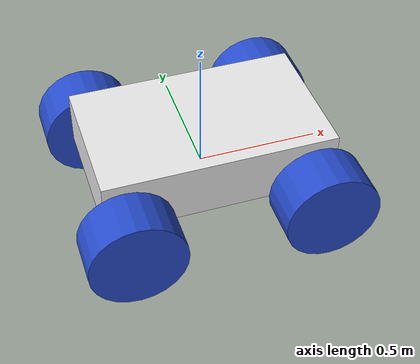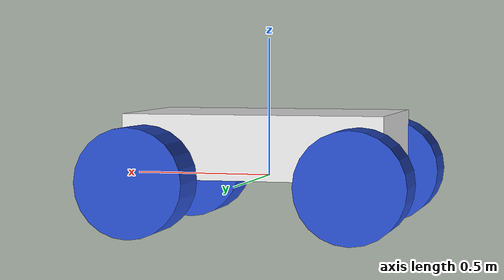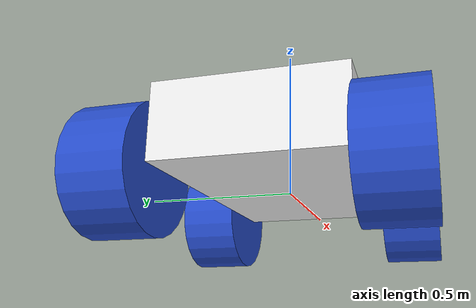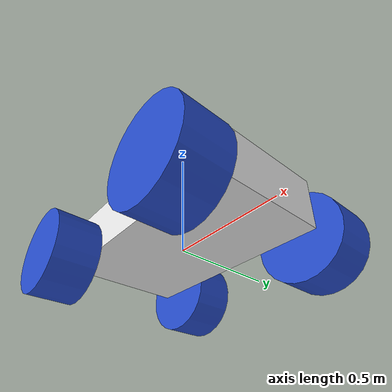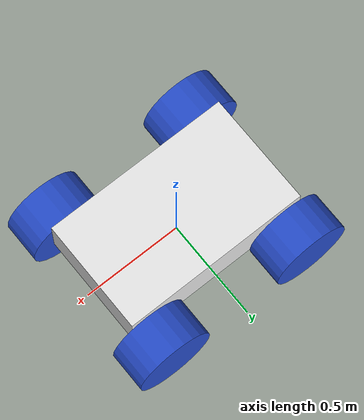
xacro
<?xml version="1.0"?>
<robot xmlns:xacro="http://www.ros.org/wiki/xacro">

    <xacro:include filename="materials.xacro"/>
    <xacro:include filename="inertial_macros.xacro"/>

    <!-- ROVER PROPERTIES -->
    <!-- mass in Kilograms, xyz in meters, rpy in radians -->
    <xacro:property name="wheel_mass" value="2.019"/>
    <xacro:property name="wheel_radius" value="0.194"/>
    <xacro:property name="wheel_width" value="0.194"/>
    <xacro:property name="wheel_dist_from_center" value="0.38735"/>

    <xacro:property name="chassis_mass" value="0.057"/>
    <xacro:property name="chassis_width" value="0.566"/>
    <xacro:property name="chassis_length" value="0.9398"/>
    <xacro:property name="chassis_height" value="0.232"/>

    <!-- BASE LINK -->
    <!-- Base link sits at bottom center of chassis -->
    <link name="base_link">
    </link>

    <!-- BASE_FOOTPRINT_LINK -->
    <joint name="base_footprint_joint" type="fixed">
        <parent link="base_link"/>
        <child link="base_footprint_link"/>
        <origin xyz="0 0 0" rpy="0 0 0"/>
    </joint>

    <link name="base_footprint_link">
    </link>

    <!-- CHASSIS LINK -->
    <!-- Chassis joint sits at back bottom center -->
    <joint name="chassis_joint" type="fixed">
        <parent link="base_link"/>
        <child link="chassis_link"/>
        <origin xyz="${-chassis_length/2} 0 0"/>
    </joint>

    <link name="chassis_link">
        <visual>
            <origin xyz="${chassis_length/2} 0 ${chassis_height/2}"/>
            <geometry>
                <box size="${chassis_length} ${chassis_width} ${chassis_height}"/>
            </geometry>
            <material name="white"/>
        </visual>

        <collision>
            <origin xyz="${chassis_length/2} 0 ${chassis_height/2}"/>
            <geometry>
                <box size="${chassis_length} ${chassis_width} ${chassis_height}"/>
            </geometry>
        </collision>

        <xacro:inertial_box mass="${chassis_mass}" x="${chassis_length}" y="${chassis_width}" z="${chassis_height}">
            <origin xyz="${chassis_length/2} 0 ${chassis_height/2}" rpy="0 0 0"/>
        </xacro:inertial_box>
    </link>

    <!-- LEFT WHEEL LINK -->
    <!-- front wheel-->
    <joint name="front_left_wheel_joint" type="continuous">
        <parent link="base_link"/>
        <child link="front_left_wheel_link"/>
        <origin xyz="${wheel_dist_from_center} ${chassis_width/2 + wheel_width/2} 0" rpy="${-pi/2} 0 0"/>
        <axis xyz="0 0 1"/>
    </joint>

    <link name="front_left_wheel_link">
        <visual>
            <geometry>
                <cylinder radius="${wheel_radius}" length="${wheel_width}"/>
            </geometry>
            <material name="blue"/>
        </visual>

        <collision>
            <geometry>
                <cylinder radius="${wheel_radius}" length="${wheel_width}"/>
            </geometry>
        </collision>

        <xacro:inertial_cylinder mass="${wheel_mass}" length="${wheel_width}" radius="${wheel_radius}">
            <origin xyz="0 0 0" rpy="0 0 0"/>
        </xacro:inertial_cylinder>
    </link>

    <!-- back wheel-->
    <joint name="back_left_wheel_joint" type="continuous">
        <parent link="base_link"/>
        <child link="back_left_wheel_link"/>
        <origin xyz="${-wheel_dist_from_center} ${chassis_width/2 + wheel_width/2} 0" rpy="${-pi/2} 0 0"/>
        <axis xyz="0 0 1"/>
    </joint>

    <link name="back_left_wheel_link">
        <visual>
            <geometry>
                <cylinder radius="${wheel_radius}" length="${wheel_width}"/>
            </geometry>
            <material name="blue"/>
        </visual>

        <collision>
            <geometry>
                <cylinder radius="${wheel_radius}" length="${wheel_width}"/>
            </geometry>
        </collision>

        <xacro:inertial_cylinder mass="${wheel_mass}" length="${wheel_width}" radius="${wheel_radius}">
            <origin xyz="0 0 0" rpy="0 0 0"/>
        </xacro:inertial_cylinder>
    </link>

    <!-- RIGHT WHEEL LINK -->
    <!-- front wheel-->
    <joint name="front_right_wheel_joint" type="continuous">
        <parent link="base_link"/>
        <child link="front_right_wheel_link"/>
        <origin xyz="${wheel_dist_from_center} ${-(chassis_width/2 + wheel_width/2)} 0" rpy="${pi/2} 0 0"/>
        <axis xyz="0 0 -1"/>
    </joint>

    <link name="front_right_wheel_link">
        <visual>
            <geometry>
                <cylinder radius="${wheel_radius}" length="${wheel_width}"/>
            </geometry>
            <material name="blue"/>
        </visual>

        <collision>
            <geometry>
                <cylinder radius="${wheel_radius}" length="${wheel_width}"/>
            </geometry>
        </collision>

        <xacro:inertial_cylinder mass="${wheel_mass}" length="${wheel_width}" radius="${wheel_radius}">
            <origin xyz="0 0 0" rpy="0 0 0"/>
        </xacro:inertial_cylinder>
    </link>

    <!-- back wheel-->
    <joint name="back_right_wheel_joint" type="continuous">
        <parent link="base_link"/>
        <child link="back_right_wheel_link"/>
        <origin xyz="${-wheel_dist_from_center} ${-(chassis_width/2 + wheel_width/2)} 0" rpy="${pi/2} 0 0"/>
        <axis xyz="0 0 -1"/>
    </joint>

    <link name="back_right_wheel_link">
        <visual>
            <geometry>
                <cylinder radius="${wheel_radius}" length="${wheel_width}"/>
            </geometry>
            <material name="blue"/>
        </visual>

        <collision>
            <geometry>
                <cylinder radius="${wheel_radius}" length="${wheel_width}"/>
            </geometry>
        </collision>

        <xacro:inertial_cylinder mass="${wheel_mass}" length="${wheel_width}" radius="${wheel_radius}">
            <origin xyz="0 0 0" rpy="0 0 0"/>
        </xacro:inertial_cylinder>
    </link>

</robot>
